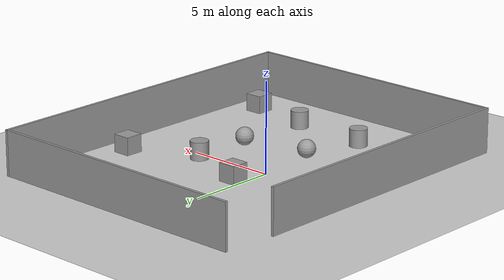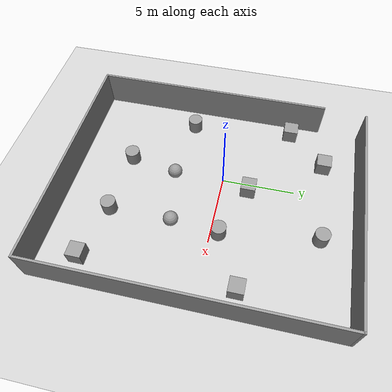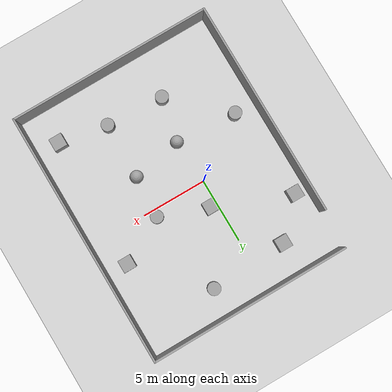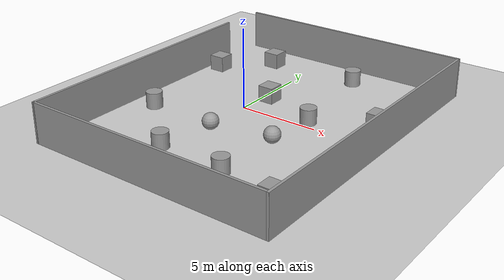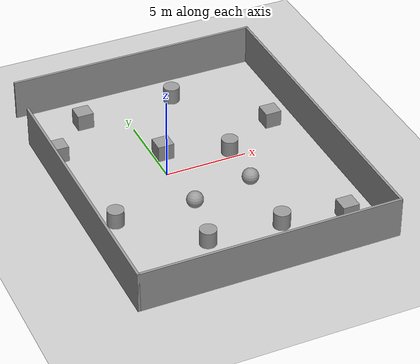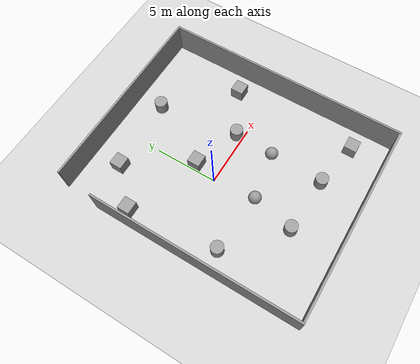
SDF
<sdf version="1.7">
 <world name="default">
  <light name="sun" type="directional">
   <pose>0 0 10 0 -0 0</pose>
   <diffuse>0.8 0.8 0.8 1</diffuse>
   <specular>0.2 0.2 0.2 1</specular>
   <attenuation>
    <range>1000</range>
    <constant>0.9</constant>
    <linear>0.01</linear>
    <quadratic>0.001</quadratic>
   </attenuation>
   <direction>-0.5 0.1 -0.9</direction>
   <spot><inner_angle>0</inner_angle><outer_angle>0</outer_angle><falloff>0</falloff></spot>
  </light>
  <model name="ground_plane">
   <static>1</static>
   <link name="link">
    <collision name="collision">
     <geometry><plane><normal>0 0 1</normal><size>100 100</size></plane></geometry>
     <surface>
      <contact><collide_bitmask>65535</collide_bitmask></contact>
      <friction><ode><mu>100</mu><mu2>50</mu2></ode></friction>
     </surface>
    </collision>
    <visual name="visual">
     <cast_shadows>0</cast_shadows>
     <geometry><plane><normal>0 0 1</normal><size>100 100</size></plane></geometry>
     <material>
      <script><uri>file://media/materials/scripts/gazebo.material</uri><name>Gazebo/Grey</name></script>
     </material>
    </visual>
   </link>
  </model>
  <gravity>0 0 -9.8</gravity>
  <magnetic_field>6e-06 2.3e-05 -4.2e-05</magnetic_field>
  <atmosphere type="adiabatic"/>
  <physics type="ode">
   <max_step_size>0.001</max_step_size>
   <real_time_factor>1</real_time_factor>
   <real_time_update_rate>1000</real_time_update_rate>
  </physics>
  <scene><ambient>0.4 0.4 0.4 1</ambient><background>0.7 0.7 0.7 1</background><shadows>1</shadows></scene>
  <spherical_coordinates>
   <surface_model>EARTH_WGS84</surface_model>
   <latitude_deg>0</latitude_deg>
   <longitude_deg>0</longitude_deg>
   <elevation>0</elevation>
   <heading_deg>0</heading_deg>
  </spherical_coordinates>
  <model name="unit_cylinder">
   <pose>-4.45444 -3.05347 0.499995 -3e-06 -2e-06 0</pose>
   <link name="link">
    <inertial>
     <mass>1</mass>
     <inertia><ixx>0.145833</ixx><ixy>0</ixy><ixz>0</ixz><iyy>0.145833</iyy><iyz>0</iyz><izz>0.125</izz></inertia>
    </inertial>
    <collision name="collision">
     <geometry><cylinder><radius>0.5</radius><length>1</length></cylinder></geometry>
    </collision>
    <visual name="visual">
     <geometry><cylinder><radius>0.5</radius><length>1</length></cylinder></geometry>
     <material>
      <script><name>Gazebo/Grey</name><uri>file://media/materials/scripts/gazebo.material</uri></script>
     </material>
    </visual>
   </link>
  </model>
  <model name="unit_box">
   <pose>-5.15346 4.14337 0.5 0 -0 0</pose>
   <link name="link">
    <inertial>
     <mass>1</mass>
     <inertia>
      <ixx>0.166667</ixx>
      <ixy>0</ixy>
      <ixz>0</ixz>
      <iyy>0.166667</iyy>
      <iyz>0</iyz>
      <izz>0.166667</izz>
     </inertia>
    </inertial>
    <collision name="collision"><geometry><box><size>1 1 1</size></box></geometry></collision>
    <visual name="visual">
     <geometry><box><size>1 1 1</size></box></geometry>
     <material>
      <script><name>Gazebo/Grey</name><uri>file://media/materials/scripts/gazebo.material</uri></script>
     </material>
    </visual>
   </link>
  </model>
  <model name="unit_cylinder_0">
   <pose>3.35062 7.03608 0.499995 -3e-06 -2e-06 0</pose>
   <link name="link">
    <inertial>
     <mass>1</mass>
     <inertia><ixx>0.145833</ixx><ixy>0</ixy><ixz>0</ixz><iyy>0.145833</iyy><iyz>0</iyz><izz>0.125</izz></inertia>
    </inertial>
    <collision name="collision">
     <geometry><cylinder><radius>0.5</radius><length>1</length></cylinder></geometry>
    </collision>
    <visual name="visual">
     <geometry><cylinder><radius>0.5</radius><length>1</length></cylinder></geometry>
     <material>
      <script><name>Gazebo/Grey</name><uri>file://media/materials/scripts/gazebo.material</uri></script>
     </material>
    </visual>
   </link>
  </model>
  <model name="unit_sphere">
   <pose>4.05255 -2.70726 0.5 0 -0 0</pose>
   <link name="link">
    <inertial>
     <mass>1</mass>
     <inertia><ixx>0.1</ixx><ixy>0</ixy><ixz>0</ixz><iyy>0.1</iyy><iyz>0</iyz><izz>0.1</izz></inertia>
    </inertial>
    <collision name="collision"><geometry><sphere><radius>0.5</radius></sphere></geometry></collision>
    <visual name="visual">
     <geometry><sphere><radius>0.5</radius></sphere></geometry>
     <material>
      <script><name>Gazebo/Grey</name><uri>file://media/materials/scripts/gazebo.material</uri></script>
     </material>
    </visual>
   </link>
  </model>
  <model name="unit_box_0">
   <pose>7.65712 -7.72028 0.5 0 -0 0</pose>
   <link name="link">
    <inertial>
     <mass>1</mass>
     <inertia>
      <ixx>0.166667</ixx>
      <ixy>0</ixy>
      <ixz>0</ixz>
      <iyy>0.166667</iyy>
      <iyz>0</iyz>
      <izz>0.166667</izz>
     </inertia>
    </inertial>
    <collision name="collision"><geometry><box><size>1 1 1</size></box></geometry></collision>
    <visual name="visual">
     <geometry><box><size>1 1 1</size></box></geometry>
     <material>
      <script><name>Gazebo/Grey</name><uri>file://media/materials/scripts/gazebo.material</uri></script>
     </material>
    </visual>
   </link>
  </model>
  <model name="unit_box_1">
   <pose>0.554136 1.86875 0.5 0 -0 0</pose>
   <link name="link">
    <inertial>
     <mass>1</mass>
     <inertia>
      <ixx>0.166667</ixx>
      <ixy>0</ixy>
      <ixz>0</ixz>
      <iyy>0.166667</iyy>
      <iyz>0</iyz>
      <izz>0.166667</izz>
     </inertia>
    </inertial>
    <collision name="collision"><geometry><box><size>1 1 1</size></box></geometry></collision>
    <visual name="visual">
     <geometry><box><size>1 1 1</size></box></geometry>
     <material>
      <script><name>Gazebo/Grey</name><uri>file://media/materials/scripts/gazebo.material</uri></script>
     </material>
    </visual>
   </link>
  </model>
  <model name="unit_box_2">
   <pose>7.78432 2.35396 0.5 0 -0 0</pose>
   <link name="link">
    <inertial>
     <mass>1</mass>
     <inertia>
      <ixx>0.166667</ixx>
      <ixy>0</ixy>
      <ixz>0</ixz>
      <iyy>0.166667</iyy>
      <iyz>0</iyz>
      <izz>0.166667</izz>
     </inertia>
    </inertial>
    <collision name="collision"><geometry><box><size>1 1 1</size></box></geometry></collision>
    <visual name="visual">
     <geometry><box><size>1 1 1</size></box></geometry>
     <material>
      <script><name>Gazebo/Grey</name><uri>file://media/materials/scripts/gazebo.material</uri></script>
     </material>
    </visual>
   </link>
  </model>
  <model name="unit_cylinder_1">
   <pose>-0.476989 -6.76466 0.5 0 -0 0</pose>
   <link name="link">
    <inertial>
     <mass>1</mass>
     <inertia><ixx>0.145833</ixx><ixy>0</ixy><ixz>0</ixz><iyy>0.145833</iyy><iyz>0</iyz><izz>0.125</izz></inertia>
    </inertial>
    <collision name="collision">
     <geometry><cylinder><radius>0.5</radius><length>1</length></cylinder></geometry>
    </collision>
    <visual name="visual">
     <geometry><cylinder><radius>0.5</radius><length>1</length></cylinder></geometry>
     <material>
      <script><name>Gazebo/Grey</name><uri>file://media/materials/scripts/gazebo.material</uri></script>
     </material>
    </visual>
   </link>
  </model>
  <model name="myhouse">
   <pose>1.6467 -0.6267 0 0 -0 0</pose>
   <link name="Wall_3">
    <collision name="Wall_3_Collision">
     <geometry><box><size>16.75 0.15 2.5</size></box></geometry>
     <pose>0 0 1.25 0 -0 0</pose>
    </collision>
    <visual name="Wall_3_Visual">
     <pose>0 0 1.25 0 -0 0</pose>
     <geometry><box><size>16.75 0.15 2.5</size></box></geometry>
     <material>
      <script><uri>file://media/materials/scripts/gazebo.material</uri><name>Gazebo/Grey</name></script>
      <ambient>1 1 1 1</ambient>
     </material>
     <meta><layer>0</layer></meta>
    </visual>
    <pose>-7.8 -1.5 0 0 -0 -1.5708</pose>
   </link>
   <link name="Wall_4">
    <collision name="Wall_4_Collision">
     <geometry><box><size>15.75 0.15 2.5</size></box></geometry>
     <pose>0 0 1.25 0 -0 0</pose>
    </collision>
    <visual name="Wall_4_Visual">
     <pose>0 0 1.25 0 -0 0</pose>
     <geometry><box><size>15.75 0.15 2.5</size></box></geometry>
     <material>
      <script><uri>file://media/materials/scripts/gazebo.material</uri><name>Gazebo/Grey</name></script>
      <ambient>1 1 1 1</ambient>
     </material>
     <meta><layer>0</layer></meta>
    </visual>
    <pose>0 -9.8 0 0 -0 0</pose>
   </link>
   <link name="Wall_5">
    <collision name="Wall_5_Collision">
     <geometry><box><size>19.75 0.15 2.5</size></box></geometry>
     <pose>0 0 1.25 0 -0 0</pose>
    </collision>
    <visual name="Wall_5_Visual">
     <pose>0 0 1.25 0 -0 0</pose>
     <geometry><box><size>19.75 0.15 2.5</size></box></geometry>
     <material>
      <script><uri>file://media/materials/scripts/gazebo.material</uri><name>Gazebo/Grey</name></script>
      <ambient>1 1 1 1</ambient>
     </material>
     <meta><layer>0</layer></meta>
    </visual>
    <pose>7.8 -0 0 0 -0 1.5708</pose>
   </link>
   <link name="Wall_6">
    <collision name="Wall_6_Collision">
     <geometry><box><size>15.5 0.15 2.5</size></box></geometry>
     <pose>0 0 1.25 0 -0 0</pose>
    </collision>
    <visual name="Wall_6_Visual">
     <pose>0 0 1.25 0 -0 0</pose>
     <geometry><box><size>15.5 0.15 2.5</size></box></geometry>
     <material>
      <script><uri>file://media/materials/scripts/gazebo.material</uri><name>Gazebo/Grey</name></script>
      <ambient>1 1 1 1</ambient>
     </material>
     <meta><layer>0</layer></meta>
    </visual>
    <pose>0.125 9.8 0 0 -0 3.14159</pose>
   </link>
   <static>1</static>
  </model>
  <model name="unit_sphere_0">
   <pose>0.243091 -3.40949 0.5 0 -0 0</pose>
   <link name="link">
    <inertial>
     <mass>1</mass>
     <inertia><ixx>0.1</ixx><ixy>0</ixy><ixz>0</ixz><iyy>0.1</iyy><iyz>0</iyz><izz>0.1</izz></inertia>
    </inertial>
    <collision name="collision"><geometry><sphere><radius>0.5</radius></sphere></geometry></collision>
    <visual name="visual">
     <geometry><sphere><radius>0.5</radius></sphere></geometry>
     <material>
      <script><name>Gazebo/Grey</name><uri>file://media/materials/scripts/gazebo.material</uri></script>
     </material>
    </visual>
   </link>
  </model>
  <model name="unit_cylinder_2">
   <pose>4.25653 0.539308 0.499997 -4e-06 -3e-06 -0</pose>
   <link name="link">
    <inertial>
     <mass>1</mass>
     <inertia><ixx>0.145833</ixx><ixy>0</ixy><ixz>0</ixz><iyy>0.145833</iyy><iyz>0</iyz><izz>0.125</izz></inertia>
    </inertial>
    <collision name="collision">
     <geometry><cylinder><radius>0.5</radius><length>1</length></cylinder></geometry>
    </collision>
    <visual name="visual">
     <geometry><cylinder><radius>0.5</radius><length>1</length></cylinder></geometry>
     <material>
      <script><name>Gazebo/Grey</name><uri>file://media/materials/scripts/gazebo.material</uri></script>
     </material>
    </visual>
   </link>
  </model>
  <model name="unit_cylinder_3">
   <pose>3.93766 -6.99496 0.499997 -4e-06 -3e-06 -0</pose>
   <link name="link">
    <inertial>
     <mass>1</mass>
     <inertia><ixx>0.145833</ixx><ixy>0</ixy><ixz>0</ixz><iyy>0.145833</iyy><iyz>0</iyz><izz>0.125</izz></inertia>
    </inertial>
    <collision name="collision">
     <geometry><cylinder><radius>0.5</radius><length>1</length></cylinder></geometry>
    </collision>
    <visual name="visual">
     <geometry><cylinder><radius>0.5</radius><length>1</length></cylinder></geometry>
     <material>
      <script><name>Gazebo/Grey</name><uri>file://media/materials/scripts/gazebo.material</uri></script>
     </material>
    </visual>
   </link>
  </model>
  <model name="unit_box_3">
   <pose>-2.56991 6.76048 0.5 0 -0 0</pose>
   <link name="link">
    <inertial>
     <mass>1</mass>
     <inertia>
      <ixx>0.166667</ixx>
      <ixy>0</ixy>
      <ixz>0</ixz>
      <iyy>0.166667</iyy>
      <iyz>0</iyz>
      <izz>0.166667</izz>
     </inertia>
    </inertial>
    <collision name="collision"><geometry><box><size>1 1 1</size></box></geometry></collision>
    <visual name="visual">
     <geometry><box><size>1 1 1</size></box></geometry>
     <material>
      <script><name>Gazebo/Grey</name><uri>file://media/materials/scripts/gazebo.material</uri></script>
     </material>
    </visual>
   </link>
  </model>
 </world>
</sdf>
